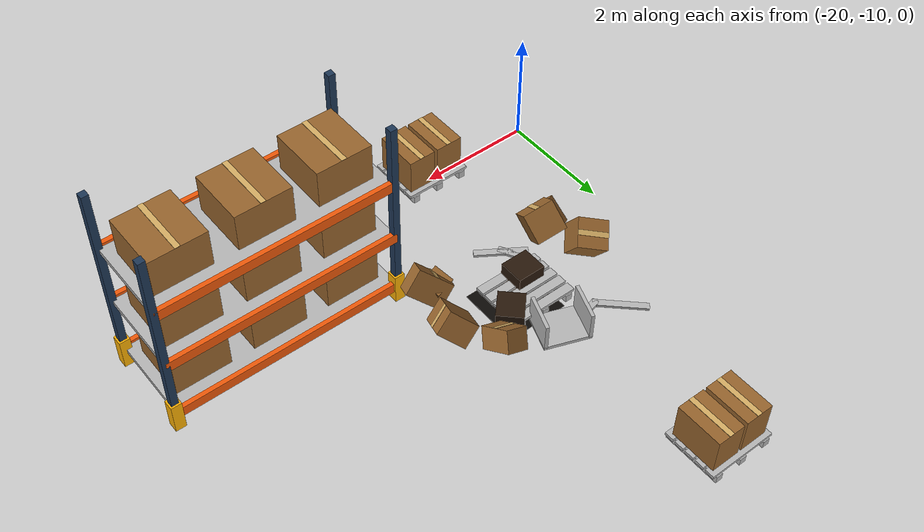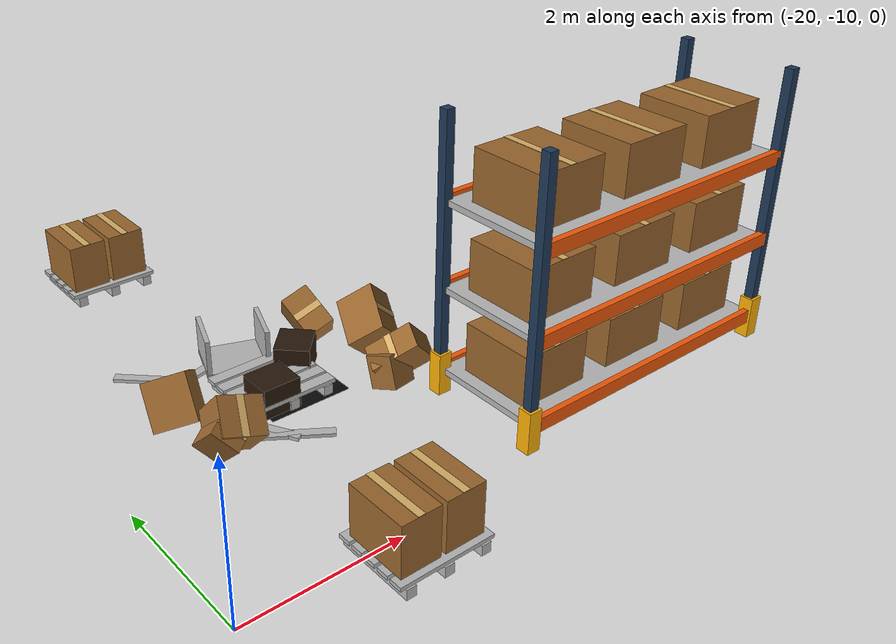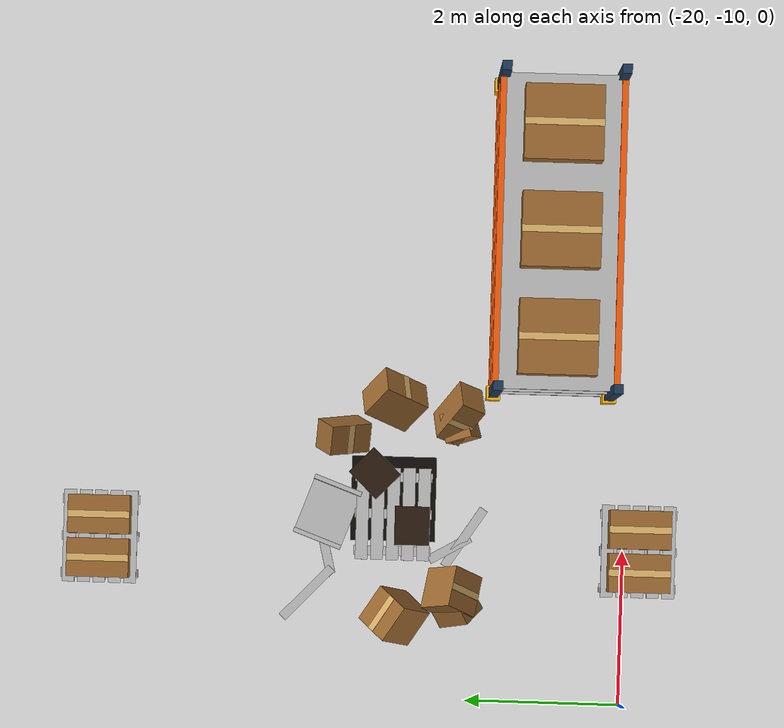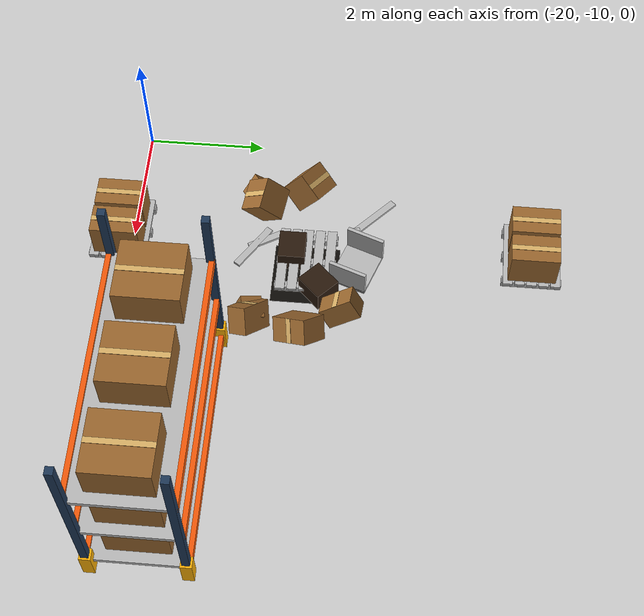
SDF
<sdf version="1.9">
 <world name="factory">
  <model name="rack_-1_1_0">
   <static>true</static>
   <pose>-14 -9 0 0 0 0</pose>
   <link name="body">
    <visual name="post0_visual">
     <pose>-2 -0.75 1.8 0 0 0</pose>
     <geometry><box><size>0.12 0.12 3.6</size></box></geometry>
     <material><ambient>.12 .22 .34 1</ambient><diffuse>.12 .22 .34 1</diffuse></material>
    </visual>
    <collision name="post0_collision">
     <pose>-2 -0.75 1.8 0 0 0</pose>
     <geometry><box><size>0.12 0.12 3.6</size></box></geometry>
    </collision>
    <visual name="guard0_visual">
     <pose>-2 -0.75 0.275 0 0 0</pose>
     <geometry><box><size>0.18 0.18 0.55</size></box></geometry>
     <material><ambient>1 .7 .02 1</ambient><diffuse>1 .7 .02 1</diffuse></material>
    </visual>
    <collision name="guard0_collision">
     <pose>-2 -0.75 0.275 0 0 0</pose>
     <geometry><box><size>0.18 0.18 0.55</size></box></geometry>
    </collision>
    <visual name="post1_visual">
     <pose>2 -0.75 1.8 0 0 0</pose>
     <geometry><box><size>0.12 0.12 3.6</size></box></geometry>
     <material><ambient>.12 .22 .34 1</ambient><diffuse>.12 .22 .34 1</diffuse></material>
    </visual>
    <collision name="post1_collision">
     <pose>2 -0.75 1.8 0 0 0</pose>
     <geometry><box><size>0.12 0.12 3.6</size></box></geometry>
    </collision>
    <visual name="guard1_visual">
     <pose>2 -0.75 0.275 0 0 0</pose>
     <geometry><box><size>0.18 0.18 0.55</size></box></geometry>
     <material><ambient>1 .7 .02 1</ambient><diffuse>1 .7 .02 1</diffuse></material>
    </visual>
    <collision name="guard1_collision">
     <pose>2 -0.75 0.275 0 0 0</pose>
     <geometry><box><size>0.18 0.18 0.55</size></box></geometry>
    </collision>
    <visual name="post2_visual">
     <pose>-2 0.75 1.8 0 0 0</pose>
     <geometry><box><size>0.12 0.12 3.6</size></box></geometry>
     <material><ambient>.12 .22 .34 1</ambient><diffuse>.12 .22 .34 1</diffuse></material>
    </visual>
    <collision name="post2_collision">
     <pose>-2 0.75 1.8 0 0 0</pose>
     <geometry><box><size>0.12 0.12 3.6</size></box></geometry>
    </collision>
    <visual name="guard2_visual">
     <pose>-2 0.75 0.275 0 0 0</pose>
     <geometry><box><size>0.18 0.18 0.55</size></box></geometry>
     <material><ambient>1 .7 .02 1</ambient><diffuse>1 .7 .02 1</diffuse></material>
    </visual>
    <collision name="guard2_collision">
     <pose>-2 0.75 0.275 0 0 0</pose>
     <geometry><box><size>0.18 0.18 0.55</size></box></geometry>
    </collision>
    <visual name="post3_visual">
     <pose>2 0.75 1.8 0 0 0</pose>
     <geometry><box><size>0.12 0.12 3.6</size></box></geometry>
     <material><ambient>.12 .22 .34 1</ambient><diffuse>.12 .22 .34 1</diffuse></material>
    </visual>
    <collision name="post3_collision">
     <pose>2 0.75 1.8 0 0 0</pose>
     <geometry><box><size>0.12 0.12 3.6</size></box></geometry>
    </collision>
    <visual name="guard3_visual">
     <pose>2 0.75 0.275 0 0 0</pose>
     <geometry><box><size>0.18 0.18 0.55</size></box></geometry>
     <material><ambient>1 .7 .02 1</ambient><diffuse>1 .7 .02 1</diffuse></material>
    </visual>
    <collision name="guard3_collision">
     <pose>2 0.75 0.275 0 0 0</pose>
     <geometry><box><size>0.18 0.18 0.55</size></box></geometry>
    </collision>
    <visual name="shelf0_visual">
     <pose>0 0 0.3 0 0 0</pose>
     <geometry><mesh><uri>model://factory_scene_assets/meshes/wood_010.dae</uri></mesh></geometry>
    </visual>
    <collision name="shelf0_collision">
     <pose>0 0 0.3 0 0 0</pose>
     <geometry><box><size>4 1.5 0.08</size></box></geometry>
    </collision>
    <visual name="beam0_0_visual">
     <pose>0 -0.77 0.3 0 0 0</pose>
     <geometry><box><size>4 0.08 0.18</size></box></geometry>
     <material><ambient>.95 .35 .035 1</ambient><diffuse>.95 .35 .035 1</diffuse></material>
    </visual>
    <collision name="beam0_0_collision">
     <pose>0 -0.77 0.3 0 0 0</pose>
     <geometry><box><size>4 0.08 0.18</size></box></geometry>
    </collision>
    <visual name="beam0_1_visual">
     <pose>0 0.77 0.3 0 0 0</pose>
     <geometry><box><size>4 0.08 0.18</size></box></geometry>
     <material><ambient>.95 .35 .035 1</ambient><diffuse>.95 .35 .035 1</diffuse></material>
    </visual>
    <collision name="beam0_1_collision">
     <pose>0 0.77 0.3 0 0 0</pose>
     <geometry><box><size>4 0.08 0.18</size></box></geometry>
    </collision>
    <visual name="cargo0_0_visual">
     <pose>-1.35 0 0.665 0 0 0</pose>
     <geometry><box><size>0.95 1 0.65</size></box></geometry>
     <material><ambient>.60 .40 .18 1</ambient><diffuse>.60 .40 .18 1</diffuse></material>
    </visual>
    <collision name="cargo0_0_collision">
     <pose>-1.35 0 0.665 0 0 0</pose>
     <geometry><box><size>0.95 1 0.65</size></box></geometry>
    </collision>
    <visual name="cargo0_0_tape_visual">
     <pose>-1.35 0 0.993 0 0 0</pose>
     <geometry><box><size>0.09 1 0.006</size></box></geometry>
     <material><ambient>.85 .69 .4 1</ambient><diffuse>.85 .69 .4 1</diffuse></material>
    </visual>
    <visual name="cargo0_1_visual">
     <pose>0 0 0.665 0 0 0</pose>
     <geometry><box><size>0.95 1 0.65</size></box></geometry>
     <material><ambient>.60 .40 .18 1</ambient><diffuse>.60 .40 .18 1</diffuse></material>
    </visual>
    <collision name="cargo0_1_collision">
     <pose>0 0 0.665 0 0 0</pose>
     <geometry><box><size>0.95 1 0.65</size></box></geometry>
    </collision>
    <visual name="cargo0_1_tape_visual">
     <pose>0 0 0.993 0 0 0</pose>
     <geometry><box><size>0.09 1 0.006</size></box></geometry>
     <material><ambient>.85 .69 .4 1</ambient><diffuse>.85 .69 .4 1</diffuse></material>
    </visual>
    <visual name="cargo0_2_visual">
     <pose>1.35 0 0.665 0 0 0</pose>
     <geometry><box><size>0.95 1 0.65</size></box></geometry>
     <material><ambient>.60 .40 .18 1</ambient><diffuse>.60 .40 .18 1</diffuse></material>
    </visual>
    <collision name="cargo0_2_collision">
     <pose>1.35 0 0.665 0 0 0</pose>
     <geometry><box><size>0.95 1 0.65</size></box></geometry>
    </collision>
    <visual name="cargo0_2_tape_visual">
     <pose>1.35 0 0.993 0 0 0</pose>
     <geometry><box><size>0.09 1 0.006</size></box></geometry>
     <material><ambient>.85 .69 .4 1</ambient><diffuse>.85 .69 .4 1</diffuse></material>
    </visual>
    <visual name="shelf1_visual">
     <pose>0 0 1.4 0 0 0</pose>
     <geometry><mesh><uri>model://factory_scene_assets/meshes/wood_010.dae</uri></mesh></geometry>
    </visual>
    <collision name="shelf1_collision">
     <pose>0 0 1.4 0 0 0</pose>
     <geometry><box><size>4 1.5 0.08</size></box></geometry>
    </collision>
    <visual name="beam1_0_visual">
     <pose>0 -0.77 1.4 0 0 0</pose>
     <geometry><box><size>4 0.08 0.18</size></box></geometry>
     <material><ambient>.95 .35 .035 1</ambient><diffuse>.95 .35 .035 1</diffuse></material>
    </visual>
    <collision name="beam1_0_collision">
     <pose>0 -0.77 1.4 0 0 0</pose>
     <geometry><box><size>4 0.08 0.18</size></box></geometry>
    </collision>
    <visual name="beam1_1_visual">
     <pose>0 0.77 1.4 0 0 0</pose>
     <geometry><box><size>4 0.08 0.18</size></box></geometry>
     <material><ambient>.95 .35 .035 1</ambient><diffuse>.95 .35 .035 1</diffuse></material>
    </visual>
    <collision name="beam1_1_collision">
     <pose>0 0.77 1.4 0 0 0</pose>
     <geometry><box><size>4 0.08 0.18</size></box></geometry>
    </collision>
    <visual name="cargo1_0_visual">
     <pose>-1.35 0 1.765 0 0 0</pose>
     <geometry><box><size>0.95 1 0.65</size></box></geometry>
     <material><ambient>.60 .40 .18 1</ambient><diffuse>.60 .40 .18 1</diffuse></material>
    </visual>
    <collision name="cargo1_0_collision">
     <pose>-1.35 0 1.765 0 0 0</pose>
     <geometry><box><size>0.95 1 0.65</size></box></geometry>
    </collision>
    <visual name="cargo1_0_tape_visual">
     <pose>-1.35 0 2.093 0 0 0</pose>
     <geometry><box><size>0.09 1 0.006</size></box></geometry>
     <material><ambient>.85 .69 .4 1</ambient><diffuse>.85 .69 .4 1</diffuse></material>
    </visual>
    <visual name="cargo1_1_visual">
     <pose>0 0 1.765 0 0 0</pose>
     <geometry><box><size>0.95 1 0.65</size></box></geometry>
     <material><ambient>.60 .40 .18 1</ambient><diffuse>.60 .40 .18 1</diffuse></material>
    </visual>
    <collision name="cargo1_1_collision">
     <pose>0 0 1.765 0 0 0</pose>
     <geometry><box><size>0.95 1 0.65</size></box></geometry>
    </collision>
    <visual name="cargo1_1_tape_visual">
     <pose>0 0 2.093 0 0 0</pose>
     <geometry><box><size>0.09 1 0.006</size></box></geometry>
     <material><ambient>.85 .69 .4 1</ambient><diffuse>.85 .69 .4 1</diffuse></material>
    </visual>
    <visual name="cargo1_2_visual">
     <pose>1.35 0 1.765 0 0 0</pose>
     <geometry><box><size>0.95 1 0.65</size></box></geometry>
     <material><ambient>.60 .40 .18 1</ambient><diffuse>.60 .40 .18 1</diffuse></material>
    </visual>
    <collision name="cargo1_2_collision">
     <pose>1.35 0 1.765 0 0 0</pose>
     <geometry><box><size>0.95 1 0.65</size></box></geometry>
    </collision>
    <visual name="cargo1_2_tape_visual">
     <pose>1.35 0 2.093 0 0 0</pose>
     <geometry><box><size>0.09 1 0.006</size></box></geometry>
     <material><ambient>.85 .69 .4 1</ambient><diffuse>.85 .69 .4 1</diffuse></material>
    </visual>
    <visual name="shelf2_visual">
     <pose>0 0 2.5 0 0 0</pose>
     <geometry><mesh><uri>model://factory_scene_assets/meshes/wood_010.dae</uri></mesh></geometry>
    </visual>
    <collision name="shelf2_collision">
     <pose>0 0 2.5 0 0 0</pose>
     <geometry><box><size>4 1.5 0.08</size></box></geometry>
    </collision>
    <visual name="beam2_0_visual">
     <pose>0 -0.77 2.5 0 0 0</pose>
     <geometry><box><size>4 0.08 0.18</size></box></geometry>
     <material><ambient>.95 .35 .035 1</ambient><diffuse>.95 .35 .035 1</diffuse></material>
    </visual>
    <collision name="beam2_0_collision">
     <pose>0 -0.77 2.5 0 0 0</pose>
     <geometry><box><size>4 0.08 0.18</size></box></geometry>
    </collision>
    <visual name="beam2_1_visual">
     <pose>0 0.77 2.5 0 0 0</pose>
     <geometry><box><size>4 0.08 0.18</size></box></geometry>
     <material><ambient>.95 .35 .035 1</ambient><diffuse>.95 .35 .035 1</diffuse></material>
    </visual>
    <collision name="beam2_1_collision">
     <pose>0 0.77 2.5 0 0 0</pose>
     <geometry><box><size>4 0.08 0.18</size></box></geometry>
    </collision>
    <visual name="cargo2_0_visual">
     <pose>-1.35 0 2.865 0 0 0</pose>
     <geometry><box><size>0.95 1 0.65</size></box></geometry>
     <material><ambient>.60 .40 .18 1</ambient><diffuse>.60 .40 .18 1</diffuse></material>
    </visual>
    <collision name="cargo2_0_collision">
     <pose>-1.35 0 2.865 0 0 0</pose>
     <geometry><box><size>0.95 1 0.65</size></box></geometry>
    </collision>
    <visual name="cargo2_0_tape_visual">
     <pose>-1.35 0 3.193 0 0 0</pose>
     <geometry><box><size>0.09 1 0.006</size></box></geometry>
     <material><ambient>.85 .69 .4 1</ambient><diffuse>.85 .69 .4 1</diffuse></material>
    </visual>
    <visual name="cargo2_1_visual">
     <pose>0 0 2.865 0 0 0</pose>
     <geometry><box><size>0.95 1 0.65</size></box></geometry>
     <material><ambient>.60 .40 .18 1</ambient><diffuse>.60 .40 .18 1</diffuse></material>
    </visual>
    <collision name="cargo2_1_collision">
     <pose>0 0 2.865 0 0 0</pose>
     <geometry><box><size>0.95 1 0.65</size></box></geometry>
    </collision>
    <visual name="cargo2_1_tape_visual">
     <pose>0 0 3.193 0 0 0</pose>
     <geometry><box><size>0.09 1 0.006</size></box></geometry>
     <material><ambient>.85 .69 .4 1</ambient><diffuse>.85 .69 .4 1</diffuse></material>
    </visual>
    <visual name="cargo2_2_visual">
     <pose>1.35 0 2.865 0 0 0</pose>
     <geometry><box><size>0.95 1 0.65</size></box></geometry>
     <material><ambient>.60 .40 .18 1</ambient><diffuse>.60 .40 .18 1</diffuse></material>
    </visual>
    <collision name="cargo2_2_collision">
     <pose>1.35 0 2.865 0 0 0</pose>
     <geometry><box><size>0.95 1 0.65</size></box></geometry>
    </collision>
    <visual name="cargo2_2_tape_visual">
     <pose>1.35 0 3.193 0 0 0</pose>
     <geometry><box><size>0.09 1 0.006</size></box></geometry>
     <material><ambient>.85 .69 .4 1</ambient><diffuse>.85 .69 .4 1</diffuse></material>
    </visual>
   </link>
  </model>
  <model name="organized_pallet_-1_0">
   <static>true</static>
   <pose>-18 -10.2 0 0 0 0</pose>
   <link name="body">
    <visual name="runner0_visual">
     <pose>-0.48 0 0.065 0 0 0</pose>
     <geometry><mesh><uri>model://factory_scene_assets/meshes/wood_011.dae</uri></mesh></geometry>
    </visual>
    <collision name="runner0_collision">
     <pose>-0.48 0 0.065 0 0 0</pose>
     <geometry><box><size>0.12 1 0.13</size></box></geometry>
    </collision>
    <visual name="runner1_visual">
     <pose>0 0 0.065 0 0 0</pose>
     <geometry><mesh><uri>model://factory_scene_assets/meshes/wood_011.dae</uri></mesh></geometry>
    </visual>
    <collision name="runner1_collision">
     <pose>0 0 0.065 0 0 0</pose>
     <geometry><box><size>0.12 1 0.13</size></box></geometry>
    </collision>
    <visual name="runner2_visual">
     <pose>0.48 0 0.065 0 0 0</pose>
     <geometry><mesh><uri>model://factory_scene_assets/meshes/wood_011.dae</uri></mesh></geometry>
    </visual>
    <collision name="runner2_collision">
     <pose>0.48 0 0.065 0 0 0</pose>
     <geometry><box><size>0.12 1 0.13</size></box></geometry>
    </collision>
    <visual name="plank0_visual">
     <pose>0 -0.4 0.155 0 0 0</pose>
     <geometry><mesh><uri>model://factory_scene_assets/meshes/wood_012.dae</uri></mesh></geometry>
    </visual>
    <collision name="plank0_collision">
     <pose>0 -0.4 0.155 0 0 0</pose>
     <geometry><box><size>1.2 0.16 0.05</size></box></geometry>
    </collision>
    <visual name="plank1_visual">
     <pose>0 -0.2 0.155 0 0 0</pose>
     <geometry><mesh><uri>model://factory_scene_assets/meshes/wood_012.dae</uri></mesh></geometry>
    </visual>
    <collision name="plank1_collision">
     <pose>0 -0.2 0.155 0 0 0</pose>
     <geometry><box><size>1.2 0.16 0.05</size></box></geometry>
    </collision>
    <visual name="plank2_visual">
     <pose>0 0 0.155 0 0 0</pose>
     <geometry><mesh><uri>model://factory_scene_assets/meshes/wood_012.dae</uri></mesh></geometry>
    </visual>
    <collision name="plank2_collision">
     <pose>0 0 0.155 0 0 0</pose>
     <geometry><box><size>1.2 0.16 0.05</size></box></geometry>
    </collision>
    <visual name="plank3_visual">
     <pose>0 0.2 0.155 0 0 0</pose>
     <geometry><mesh><uri>model://factory_scene_assets/meshes/wood_012.dae</uri></mesh></geometry>
    </visual>
    <collision name="plank3_collision">
     <pose>0 0.2 0.155 0 0 0</pose>
     <geometry><box><size>1.2 0.16 0.05</size></box></geometry>
    </collision>
    <visual name="plank4_visual">
     <pose>0 0.4 0.155 0 0 0</pose>
     <geometry><mesh><uri>model://factory_scene_assets/meshes/wood_012.dae</uri></mesh></geometry>
    </visual>
    <collision name="plank4_collision">
     <pose>0 0.4 0.155 0 0 0</pose>
     <geometry><box><size>1.2 0.16 0.05</size></box></geometry>
    </collision>
    <visual name="load0_visual">
     <pose>-0.28 0 0.505 0 0 0</pose>
     <geometry><box><size>0.5 0.8 0.65</size></box></geometry>
     <material><ambient>.60 .40 .18 1</ambient><diffuse>.60 .40 .18 1</diffuse></material>
    </visual>
    <collision name="load0_collision">
     <pose>-0.28 0 0.505 0 0 0</pose>
     <geometry><box><size>0.5 0.8 0.65</size></box></geometry>
    </collision>
    <visual name="load0_tape_visual">
     <pose>-0.28 0 0.833 0 0 0</pose>
     <geometry><box><size>0.09 0.8 0.006</size></box></geometry>
     <material><ambient>.85 .69 .4 1</ambient><diffuse>.85 .69 .4 1</diffuse></material>
    </visual>
    <visual name="load1_visual">
     <pose>0.28 0 0.505 0 0 0</pose>
     <geometry><box><size>0.5 0.8 0.65</size></box></geometry>
     <material><ambient>.60 .40 .18 1</ambient><diffuse>.60 .40 .18 1</diffuse></material>
    </visual>
    <collision name="load1_collision">
     <pose>0.28 0 0.505 0 0 0</pose>
     <geometry><box><size>0.5 0.8 0.65</size></box></geometry>
    </collision>
    <visual name="load1_tape_visual">
     <pose>0.28 0 0.833 0 0 0</pose>
     <geometry><box><size>0.09 0.8 0.006</size></box></geometry>
     <material><ambient>.85 .69 .4 1</ambient><diffuse>.85 .69 .4 1</diffuse></material>
    </visual>
   </link>
  </model>
  <model name="organized_pallet_-1_1">
   <static>true</static>
   <pose>-18 -3.2 0 0 0 0</pose>
   <link name="body">
    <visual name="runner0_visual">
     <pose>-0.48 0 0.065 0 0 0</pose>
     <geometry><mesh><uri>model://factory_scene_assets/meshes/wood_011.dae</uri></mesh></geometry>
    </visual>
    <collision name="runner0_collision">
     <pose>-0.48 0 0.065 0 0 0</pose>
     <geometry><box><size>0.12 1 0.13</size></box></geometry>
    </collision>
    <visual name="runner1_visual">
     <pose>0 0 0.065 0 0 0</pose>
     <geometry><mesh><uri>model://factory_scene_assets/meshes/wood_011.dae</uri></mesh></geometry>
    </visual>
    <collision name="runner1_collision">
     <pose>0 0 0.065 0 0 0</pose>
     <geometry><box><size>0.12 1 0.13</size></box></geometry>
    </collision>
    <visual name="runner2_visual">
     <pose>0.48 0 0.065 0 0 0</pose>
     <geometry><mesh><uri>model://factory_scene_assets/meshes/wood_011.dae</uri></mesh></geometry>
    </visual>
    <collision name="runner2_collision">
     <pose>0.48 0 0.065 0 0 0</pose>
     <geometry><box><size>0.12 1 0.13</size></box></geometry>
    </collision>
    <visual name="plank0_visual">
     <pose>0 -0.4 0.155 0 0 0</pose>
     <geometry><mesh><uri>model://factory_scene_assets/meshes/wood_012.dae</uri></mesh></geometry>
    </visual>
    <collision name="plank0_collision">
     <pose>0 -0.4 0.155 0 0 0</pose>
     <geometry><box><size>1.2 0.16 0.05</size></box></geometry>
    </collision>
    <visual name="plank1_visual">
     <pose>0 -0.2 0.155 0 0 0</pose>
     <geometry><mesh><uri>model://factory_scene_assets/meshes/wood_012.dae</uri></mesh></geometry>
    </visual>
    <collision name="plank1_collision">
     <pose>0 -0.2 0.155 0 0 0</pose>
     <geometry><box><size>1.2 0.16 0.05</size></box></geometry>
    </collision>
    <visual name="plank2_visual">
     <pose>0 0 0.155 0 0 0</pose>
     <geometry><mesh><uri>model://factory_scene_assets/meshes/wood_012.dae</uri></mesh></geometry>
    </visual>
    <collision name="plank2_collision">
     <pose>0 0 0.155 0 0 0</pose>
     <geometry><box><size>1.2 0.16 0.05</size></box></geometry>
    </collision>
    <visual name="plank3_visual">
     <pose>0 0.2 0.155 0 0 0</pose>
     <geometry><mesh><uri>model://factory_scene_assets/meshes/wood_012.dae</uri></mesh></geometry>
    </visual>
    <collision name="plank3_collision">
     <pose>0 0.2 0.155 0 0 0</pose>
     <geometry><box><size>1.2 0.16 0.05</size></box></geometry>
    </collision>
    <visual name="plank4_visual">
     <pose>0 0.4 0.155 0 0 0</pose>
     <geometry><mesh><uri>model://factory_scene_assets/meshes/wood_012.dae</uri></mesh></geometry>
    </visual>
    <collision name="plank4_collision">
     <pose>0 0.4 0.155 0 0 0</pose>
     <geometry><box><size>1.2 0.16 0.05</size></box></geometry>
    </collision>
    <visual name="load0_visual">
     <pose>-0.28 0 0.505 0 0 0</pose>
     <geometry><box><size>0.5 0.8 0.65</size></box></geometry>
     <material><ambient>.60 .40 .18 1</ambient><diffuse>.60 .40 .18 1</diffuse></material>
    </visual>
    <collision name="load0_collision">
     <pose>-0.28 0 0.505 0 0 0</pose>
     <geometry><box><size>0.5 0.8 0.65</size></box></geometry>
    </collision>
    <visual name="load0_tape_visual">
     <pose>-0.28 0 0.833 0 0 0</pose>
     <geometry><box><size>0.09 0.8 0.006</size></box></geometry>
     <material><ambient>.85 .69 .4 1</ambient><diffuse>.85 .69 .4 1</diffuse></material>
    </visual>
    <visual name="load1_visual">
     <pose>0.28 0 0.505 0 0 0</pose>
     <geometry><box><size>0.5 0.8 0.65</size></box></geometry>
     <material><ambient>.60 .40 .18 1</ambient><diffuse>.60 .40 .18 1</diffuse></material>
    </visual>
    <collision name="load1_collision">
     <pose>0.28 0 0.505 0 0 0</pose>
     <geometry><box><size>0.5 0.8 0.65</size></box></geometry>
    </collision>
    <visual name="load1_tape_visual">
     <pose>0.28 0 0.833 0 0 0</pose>
     <geometry><box><size>0.09 0.8 0.006</size></box></geometry>
     <material><ambient>.85 .69 .4 1</ambient><diffuse>.85 .69 .4 1</diffuse></material>
    </visual>
   </link>
  </model>
  <model name="fallen_pallet_0">
   <static>true</static>
   <pose>-17.6 -7 0 0 0 0</pose>
   <link name="body">
    <visual name="runner0_visual">
     <pose>-0.48 0 0.065 0 0 0</pose>
     <geometry><mesh><uri>model://factory_scene_assets/meshes/wood_011.dae</uri></mesh></geometry>
    </visual>
    <collision name="runner0_collision">
     <pose>-0.48 0 0.065 0 0 0</pose>
     <geometry><box><size>0.12 1 0.13</size></box></geometry>
    </collision>
    <visual name="runner1_visual">
     <pose>0 0 0.065 0 0 0</pose>
     <geometry><mesh><uri>model://factory_scene_assets/meshes/wood_011.dae</uri></mesh></geometry>
    </visual>
    <collision name="runner1_collision">
     <pose>0 0 0.065 0 0 0</pose>
     <geometry><box><size>0.12 1 0.13</size></box></geometry>
    </collision>
    <visual name="runner2_visual">
     <pose>0.48 0 0.065 0 0 0</pose>
     <geometry><mesh><uri>model://factory_scene_assets/meshes/wood_011.dae</uri></mesh></geometry>
    </visual>
    <collision name="runner2_collision">
     <pose>0.48 0 0.065 0 0 0</pose>
     <geometry><box><size>0.12 1 0.13</size></box></geometry>
    </collision>
    <visual name="plank0_visual">
     <pose>0 -0.4 0.155 0 0 0</pose>
     <geometry><mesh><uri>model://factory_scene_assets/meshes/wood_012.dae</uri></mesh></geometry>
    </visual>
    <collision name="plank0_collision">
     <pose>0 -0.4 0.155 0 0 0</pose>
     <geometry><box><size>1.2 0.16 0.05</size></box></geometry>
    </collision>
    <visual name="plank1_visual">
     <pose>0 -0.2 0.155 0 0 0</pose>
     <geometry><mesh><uri>model://factory_scene_assets/meshes/wood_012.dae</uri></mesh></geometry>
    </visual>
    <collision name="plank1_collision">
     <pose>0 -0.2 0.155 0 0 0</pose>
     <geometry><box><size>1.2 0.16 0.05</size></box></geometry>
    </collision>
    <visual name="plank2_visual">
     <pose>0 0 0.155 0 0 0</pose>
     <geometry><mesh><uri>model://factory_scene_assets/meshes/wood_012.dae</uri></mesh></geometry>
    </visual>
    <collision name="plank2_collision">
     <pose>0 0 0.155 0 0 0</pose>
     <geometry><box><size>1.2 0.16 0.05</size></box></geometry>
    </collision>
    <visual name="plank3_visual">
     <pose>0 0.2 0.155 0 0 0</pose>
     <geometry><mesh><uri>model://factory_scene_assets/meshes/wood_012.dae</uri></mesh></geometry>
    </visual>
    <collision name="plank3_collision">
     <pose>0 0.2 0.155 0 0 0</pose>
     <geometry><box><size>1.2 0.16 0.05</size></box></geometry>
    </collision>
    <visual name="plank4_visual">
     <pose>0 0.4 0.155 0 0 0</pose>
     <geometry><mesh><uri>model://factory_scene_assets/meshes/wood_012.dae</uri></mesh></geometry>
    </visual>
    <collision name="plank4_collision">
     <pose>0 0.4 0.155 0 0 0</pose>
     <geometry><box><size>1.2 0.16 0.05</size></box></geometry>
    </collision>
   </link>
  </model>
  <model name="fallen_box_00_0">
   <static>true</static>
   <pose>-16.6 -6.329896 0 0 0 0</pose>
   <link name="body">
    <visual name="box_visual">
     <pose>0 0 0.3721789 -0.3908299 -0.5486714 1.70651</pose>
     <geometry><box><size>0.591972 0.3868295 0.3674552</size></box></geometry>
     <material><ambient>.60 .40 .18 1</ambient><diffuse>.60 .40 .18 1</diffuse></material>
    </visual>
    <collision name="box_collision">
     <pose>0 0 0.3721789 -0.3908299 -0.5486714 1.70651</pose>
     <geometry><box><size>0.591972 0.3868295 0.3674552</size></box></geometry>
    </collision>
    <visual name="box_tape_visual">
     <pose>-0.05829807 -0.09884121 0.5194846 -0.3908299 -0.5486714 1.70651</pose>
     <geometry><box><size>0.09 0.3868295 0.006</size></box></geometry>
     <material><ambient>.85 .69 .4 1</ambient><diffuse>.85 .69 .4 1</diffuse></material>
    </visual>
   </link>
  </model>
  <model name="fallen_box_00_1">
   <static>true</static>
   <pose>-18.6 -7.785305 0 0 0 0</pose>
   <link name="body">
    <visual name="box_visual">
     <pose>0 0 0.4235727 -0.7137034 -0.2666209 2.959926</pose>
     <geometry><box><size>0.5425043 0.4786469 0.5237573</size></box></geometry>
     <material><ambient>.60 .40 .18 1</ambient><diffuse>.60 .40 .18 1</diffuse></material>
    </visual>
    <collision name="box_collision">
     <pose>0 0 0.4235727 -0.7137034 -0.2666209 2.959926</pose>
     <geometry><box><size>0.5425043 0.4786469 0.5237573</size></box></geometry>
    </collision>
    <visual name="box_tape_visual">
     <pose>0.02055998 -0.1800775 0.6167309 -0.7137034 -0.2666209 2.959926</pose>
     <geometry><box><size>0.09 0.4786469 0.006</size></box></geometry>
     <material><ambient>.85 .69 .4 1</ambient><diffuse>.85 .69 .4 1</diffuse></material>
    </visual>
   </link>
  </model>
  <model name="fallen_box_00_2">
   <static>true</static>
   <pose>-16.44 -7.840758 0 0 0 0</pose>
   <link name="body">
    <visual name="box_visual">
     <pose>0 0 0.2871812 -0.318109 0.1177872 0.2616133</pose>
     <geometry><box><size>0.3796848 0.3581435 0.42248</size></box></geometry>
     <material><ambient>.60 .40 .18 1</ambient><diffuse>.60 .40 .18 1</diffuse></material>
    </visual>
    <collision name="box_collision">
     <pose>0 0 0.2871812 -0.318109 0.1177872 0.2616133</pose>
     <geometry><box><size>0.3796848 0.3581435 0.42248</size></box></geometry>
    </collision>
    <visual name="box_tape_visual">
     <pose>0.005768691 0.07091295 0.4892625 -0.318109 0.1177872 0.2616133</pose>
     <geometry><box><size>0.09 0.3581435 0.006</size></box></geometry>
     <material><ambient>.85 .69 .4 1</ambient><diffuse>.85 .69 .4 1</diffuse></material>
    </visual>
   </link>
  </model>
  <model name="fallen_box_00_3">
   <static>true</static>
   <pose>-18.76 -7.829726 0 0 0 0</pose>
   <link name="body">
    <visual name="box_visual">
     <pose>0 0 0.3695079 -0.7519003 0.3462498 -2.62715</pose>
     <geometry><box><size>0.411473 0.3771889 0.4905537</size></box></geometry>
     <material><ambient>.60 .40 .18 1</ambient><diffuse>.60 .40 .18 1</diffuse></material>
    </visual>
    <collision name="box_collision">
     <pose>0 0 0.3695079 -0.7519003 0.3462498 -2.62715</pose>
     <geometry><box><size>0.411473 0.3771889 0.4905537</size></box></geometry>
    </collision>
    <visual name="box_tape_visual">
     <pose>0.02986565 -0.1779124 0.5400853 -0.7519003 0.3462498 -2.62715</pose>
     <geometry><box><size>0.09 0.3771889 0.006</size></box></geometry>
     <material><ambient>.85 .69 .4 1</ambient><diffuse>.85 .69 .4 1</diffuse></material>
    </visual>
   </link>
  </model>
  <model name="fallen_box_00_4">
   <static>true</static>
   <pose>-16.28 -7.820596 0 0 0 0</pose>
   <link name="body">
    <visual name="box_visual">
     <pose>0 0 0.4226365 -0.5349991 0.5927142 2.473484</pose>
     <geometry><box><size>0.6404287 0.340115 0.4536511</size></box></geometry>
     <material><ambient>.60 .40 .18 1</ambient><diffuse>.60 .40 .18 1</diffuse></material>
    </visual>
    <collision name="box_collision">
     <pose>0 0 0.4226365 -0.5349991 0.5927142 2.473484</pose>
     <geometry><box><size>0.6404287 0.340115 0.4536511</size></box></geometry>
    </collision>
    <visual name="box_tape_visual">
     <pose>-0.1592882 -0.02356057 0.5866241 -0.5349991 0.5927142 2.473484</pose>
     <geometry><box><size>0.09 0.340115 0.006</size></box></geometry>
     <material><ambient>.85 .69 .4 1</ambient><diffuse>.85 .69 .4 1</diffuse></material>
    </visual>
   </link>
  </model>
  <model name="fallen_box_00_5">
   <static>true</static>
   <pose>-18.92 -7.052058 0 0 0 0</pose>
   <link name="body">
    <visual name="box_visual">
     <pose>0 0 0.4452047 0.3188334 -0.542528 -2.306959</pose>
     <geometry><box><size>0.4967853 0.5264466 0.5811216</size></box></geometry>
     <material><ambient>.60 .40 .18 1</ambient><diffuse>.60 .40 .18 1</diffuse></material>
    </visual>
    <collision name="box_collision">
     <pose>0 0 0.4452047 0.3188334 -0.542528 -2.306959</pose>
     <geometry><box><size>0.4967853 0.5264466 0.5811216</size></box></geometry>
    </collision>
    <visual name="box_tape_visual">
     <pose>0.02844901 0.1684439 0.6839415 0.3188334 -0.542528 -2.306959</pose>
     <geometry><box><size>0.09 0.5264466 0.006</size></box></geometry>
     <material><ambient>.85 .69 .4 1</ambient><diffuse>.85 .69 .4 1</diffuse></material>
    </visual>
   </link>
  </model>
  <model name="fallen_box_00_6">
   <static>true</static>
   <pose>-16.12 -6.986345 0 0 0 0</pose>
   <link name="body">
    <visual name="box_visual">
     <pose>0 0 0.4480142 -0.8776814 0.4938482 -1.954509</pose>
     <geometry><box><size>0.6454747 0.4069434 0.5233281</size></box></geometry>
     <material><ambient>.60 .40 .18 1</ambient><diffuse>.60 .40 .18 1</diffuse></material>
    </visual>
    <collision name="box_collision">
     <pose>0 0 0.4480142 -0.8776814 0.4938482 -1.954509</pose>
     <geometry><box><size>0.6454747 0.4069434 0.5233281</size></box></geometry>
    </collision>
    <visual name="box_tape_visual">
     <pose>0.1587817 -0.1505481 0.5969124 -0.8776814 0.4938482 -1.954509</pose>
     <geometry><box><size>0.09 0.4069434 0.006</size></box></geometry>
     <material><ambient>.85 .69 .4 1</ambient><diffuse>.85 .69 .4 1</diffuse></material>
    </visual>
   </link>
  </model>
  <model name="broken_crate_00">
   <static>true</static>
   <pose>-17.6 -6.15 0 0 0 -0.3509513</pose>
   <link name="body">
    <visual name="base_visual">
     <pose>0 0 0.03 0 0 0</pose>
     <geometry><mesh><uri>model://factory_scene_assets/meshes/wood_013.dae</uri></mesh></geometry>
    </visual>
    <collision name="base_collision">
     <pose>0 0 0.03 0 0 0</pose>
     <geometry><box><size>0.8 0.65 0.06</size></box></geometry>
    </collision>
    <visual name="side0_visual">
     <pose>-0.37 0 0.28 0 0 0</pose>
     <geometry><mesh><uri>model://factory_scene_assets/meshes/wood_014.dae</uri></mesh></geometry>
    </visual>
    <collision name="side0_collision">
     <pose>-0.37 0 0.28 0 0 0</pose>
     <geometry><box><size>0.06 0.65 0.5</size></box></geometry>
    </collision>
    <visual name="side1_visual">
     <pose>0.37 0 0.28 0 0 0</pose>
     <geometry><mesh><uri>model://factory_scene_assets/meshes/wood_014.dae</uri></mesh></geometry>
    </visual>
    <collision name="side1_collision">
     <pose>0.37 0 0.28 0 0 0</pose>
     <geometry><box><size>0.06 0.65 0.5</size></box></geometry>
    </collision>
   </link>
  </model>
  <model name="debris_plank_00_0">
   <static>true</static>
   <pose>-17.3917 -6.208905 0 0 0 -1.825386</pose>
   <link name="body">
    <visual name="wood_visual">
     <pose>0 0 0.023 0 0 0</pose>
     <geometry><mesh><uri>model://factory_scene_assets/meshes/wood_015.dae</uri></mesh></geometry>
    </visual>
    <collision name="wood_collision">
     <pose>0 0 0.023 0 0 0</pose>
     <geometry><box><size>0.5212686 0.12 0.045</size></box></geometry>
    </collision>
   </link>
  </model>
  <model name="debris_plank_00_1">
   <static>true</static>
   <pose>-18.65405 -5.909471 0 0 0 2.383274</pose>
   <link name="body">
    <visual name="wood_visual">
     <pose>0 0 0.023 0 0 0</pose>
     <geometry><mesh><uri>model://factory_scene_assets/meshes/wood_016.dae</uri></mesh></geometry>
    </visual>
    <collision name="wood_collision">
     <pose>0 0 0.023 0 0 0</pose>
     <geometry><box><size>0.902206 0.12 0.045</size></box></geometry>
    </collision>
   </link>
  </model>
  <model name="debris_plank_00_2">
   <static>true</static>
   <pose>-18.13789 -6.147291 0 0 0 0.2368439</pose>
   <link name="body">
    <visual name="wood_visual">
     <pose>0 0 0.023 0 0 0</pose>
     <geometry><mesh><uri>model://factory_scene_assets/meshes/wood_017.dae</uri></mesh></geometry>
    </visual>
    <collision name="wood_collision">
     <pose>0 0 0.023 0 0 0</pose>
     <geometry><box><size>0.537289 0.12 0.045</size></box></geometry>
    </collision>
   </link>
  </model>
  <model name="debris_plank_00_3">
   <static>true</static>
   <pose>-18.03185 -7.74709 0 0 0 -1.051121</pose>
   <link name="body">
    <visual name="wood_visual">
     <pose>0 0 0.023 0 0 0</pose>
     <geometry><mesh><uri>model://factory_scene_assets/meshes/wood_018.dae</uri></mesh></geometry>
    </visual>
    <collision name="wood_collision">
     <pose>0 0 0.023 0 0 0</pose>
     <geometry><box><size>0.6060823 0.12 0.045</size></box></geometry>
    </collision>
   </link>
  </model>
  <model name="debris_plank_00_4">
   <static>true</static>
   <pose>-17.88267 -7.934942 0 0 0 -0.5814127</pose>
   <link name="body">
    <visual name="wood_visual">
     <pose>0 0 0.023 0 0 0</pose>
     <geometry><mesh><uri>model://factory_scene_assets/meshes/wood_019.dae</uri></mesh></geometry>
    </visual>
    <collision name="wood_collision">
     <pose>0 0 0.023 0 0 0</pose>
     <geometry><box><size>0.9020515 0.12 0.045</size></box></geometry>
    </collision>
   </link>
  </model>
  <model name="fire_01">
   <static>true</static>
   <pose>-17.4 -7 0 0 0 0</pose>
   <link name="body">
    <visual name="scorch_visual">
     <pose>0 0 0.003 0 0 0</pose>
     <geometry><box><size>1.1 1.1 0.004</size></box></geometry>
     <material><ambient>.045 .035 .025 1</ambient><diffuse>.045 .035 .025 1</diffuse></material>
    </visual>
    <visual name="charred_crate0_visual">
     <pose>-0.35 -0.25 0.2 0 0 0</pose>
     <geometry><box><size>0.5 0.45 0.4</size></box></geometry>
     <material><ambient>.16 .095 .045 1</ambient><diffuse>.16 .095 .045 1</diffuse></material>
    </visual>
    <collision name="charred_crate0_collision">
     <pose>-0.35 -0.25 0.2 0 0 0</pose>
     <geometry><box><size>0.5 0.45 0.4</size></box></geometry>
    </collision>
    <visual name="charred_crate1_visual">
     <pose>0.32 0.25 0.2 0 0 0.8</pose>
     <geometry><box><size>0.5 0.45 0.4</size></box></geometry>
     <material><ambient>.16 .095 .045 1</ambient><diffuse>.16 .095 .045 1</diffuse></material>
    </visual>
    <collision name="charred_crate1_collision">
     <pose>0.32 0.25 0.2 0 0 0.8</pose>
     <geometry><box><size>0.5 0.45 0.4</size></box></geometry>
    </collision>
    <particle_emitter name="flame" type="box">
     <pose>0 0 .35 0 -1.57079633 0</pose>
     <emitting>true</emitting>
     <size>.12 .65 .65</size>
     <particle_size>.65 1.15 .65</particle_size>
     <lifetime>0.9</lifetime>
     <rate>40</rate>
     <min_velocity>0.35</min_velocity>
     <max_velocity>1.1</max_velocity>
     <scale_rate>0.02</scale_rate>
     <particle_scatter_ratio>.05</particle_scatter_ratio>
     <color_start>1 1 1 1</color_start>
     <color_end>1 .65 .35 0</color_end>
     <material>
      <diffuse>1 1 1 1</diffuse>
      <emissive>1 .55 .1 1</emissive>
      <pbr><metal><albedo_map>model://factory_scene_assets/textures/flame_colored.png</albedo_map></metal></pbr>
     </material>
    </particle_emitter>
    <particle_emitter name="smoke" type="box">
     <pose>0 0 1.25 0 -1.57079633 0</pose>
     <emitting>true</emitting>
     <size>.15 .85 .85</size>
     <particle_size>.8 .8 .8</particle_size>
     <lifetime>3</lifetime>
     <rate>7</rate>
     <min_velocity>0.45</min_velocity>
     <max_velocity>0.8</max_velocity>
     <scale_rate>0.45</scale_rate>
     <particle_scatter_ratio>.05</particle_scatter_ratio>
     <color_start>1 1 1 1</color_start>
     <color_end>.65 .65 .65 0</color_end>
     <material>
      <diffuse>1 1 1 1</diffuse>
      <emissive>0 0 0 1</emissive>
      <pbr><metal><albedo_map>model://factory_scene_assets/textures/smoke_gray.png</albedo_map></metal></pbr>
     </material>
    </particle_emitter>
    <light name="fire_glow" type="point">
     <pose>0 0 .8 0 0 0</pose>
     <diffuse>1 .38 .025 1</diffuse>
     <cast_shadows>false</cast_shadows>
     <attenuation>
      <range>4</range>
      <constant>1</constant>
      <linear>0.5</linear>
      <quadratic>0.2</quadratic>
     </attenuation>
    </light>
   </link>
  </model>
 </world>
</sdf>
